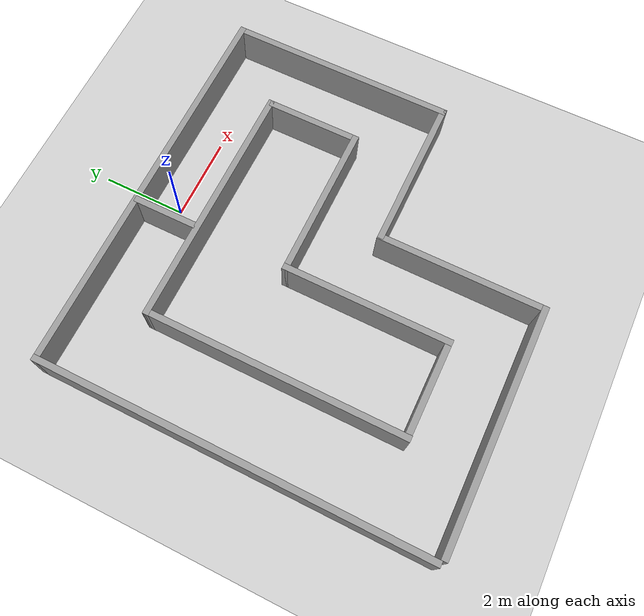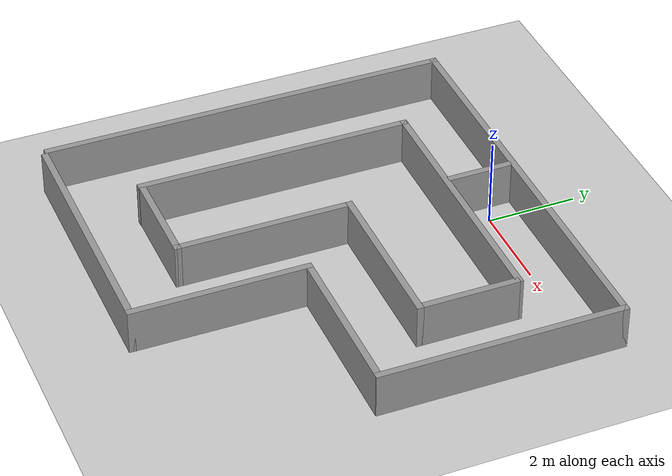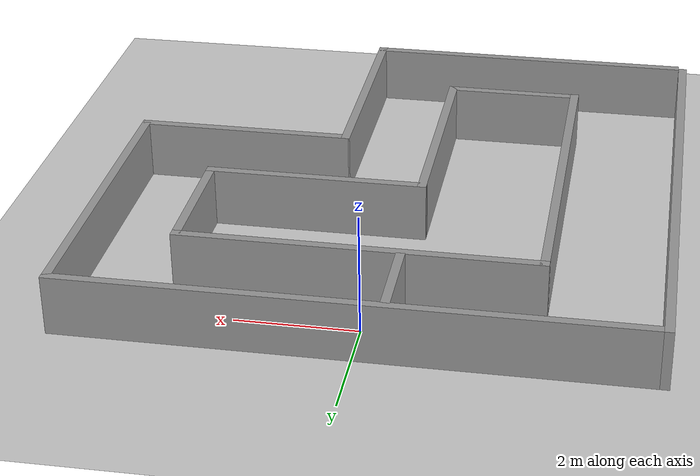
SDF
<sdf version="1.6">
 <world name="default">
  <light name="sun" type="directional">
   <pose>0 0 10 0 -0 0</pose>
   <diffuse>0.8 0.8 0.8 1</diffuse>
   <specular>0.2 0.2 0.2 1</specular>
   <attenuation>
    <range>1000</range>
    <constant>0.9</constant>
    <linear>0.01</linear>
    <quadratic>0.001</quadratic>
   </attenuation>
   <direction>0.5 0.1 -0.9</direction>
  </light>
  <model name="ground_plane">
   <static>1</static>
   <link name="link">
    <collision name="collision">
     <geometry><plane><normal>0 0 1</normal><size>100 100</size></plane></geometry>
     <surface><friction><ode><mu>100</mu><mu2>50</mu2></ode></friction></surface>
    </collision>
    <visual name="visual">
     <cast_shadows>0</cast_shadows>
     <geometry><plane><normal>0 0 1</normal><size>100 100</size></plane></geometry>
     <material>
      <script><uri>file://media/materials/scripts/gazebo.material</uri><name>Gazebo/Grey</name></script>
     </material>
    </visual>
    <velocity_decay><linear>0</linear><angular>0</angular></velocity_decay>
   </link>
  </model>
  <scene><ambient>0.4 0.4 0.4 1</ambient><background>0.7 0.7 0.7 1</background><shadows>0</shadows></scene>
  <physics name="default_physics" default="0" type="ode">
   <max_step_size>0.01</max_step_size>
   <real_time_factor>1</real_time_factor>
   <real_time_update_rate>0</real_time_update_rate>
  </physics>
  <model name="Circuit_ql_2">
   <pose>1e-06 -3.85 0 0 -0 1.567</pose>
   <link name="Wall_0">
    <collision name="Wall_0_Collision">
     <geometry><box><size>5.75 0.15 1</size></box></geometry>
     <pose>0 0 0.5 0 -0 0</pose>
    </collision>
    <visual name="Wall_0_Visual">
     <pose>0 0 0.5 0 -0 0</pose>
     <geometry><box><size>5.75 0.15 1</size></box></geometry>
     <material>
      <script><uri>file://media/materials/scripts/gazebo.material</uri><name>Gazebo/Grey</name></script>
      <ambient>1 1 1 1</ambient>
     </material>
    </visual>
    <pose>-4.6 1.725 0 0 0 -1.5708</pose>
   </link>
   <link name="Wall_1">
    <collision name="Wall_1_Collision">
     <geometry><box><size>4 0.15 1</size></box></geometry>
     <pose>0 0 0.5 0 -0 0</pose>
    </collision>
    <visual name="Wall_1_Visual">
     <pose>0 0 0.5 0 -0 0</pose>
     <geometry><box><size>4 0.15 1</size></box></geometry>
     <material>
      <script><uri>file://media/materials/scripts/gazebo.material</uri><name>Gazebo/Grey</name></script>
      <ambient>1 1 1 1</ambient>
     </material>
    </visual>
    <pose>-2.675 -1.075 0 0 -0 0</pose>
   </link>
   <link name="Wall_11">
    <collision name="Wall_11_Collision">
     <geometry><box><size>2.25 0.15 1</size></box></geometry>
     <pose>0 0 0.5 0 -0 0</pose>
    </collision>
    <visual name="Wall_11_Visual">
     <pose>0 0 0.5 0 -0 0</pose>
     <geometry><box><size>2.25 0.15 1</size></box></geometry>
     <material>
      <script><uri>file://media/materials/scripts/gazebo.material</uri><name>Gazebo/Grey</name></script>
      <ambient>1 1 1 1</ambient>
     </material>
    </visual>
    <pose>-3.036 1.559 0 0 0 -1.5708</pose>
   </link>
   <link name="Wall_12">
    <collision name="Wall_12_Collision">
     <geometry><box><size>4 0.15 1</size></box></geometry>
     <pose>0 0 0.5 0 -0 0</pose>
    </collision>
    <visual name="Wall_12_Visual">
     <pose>0 0 0.5 0 -0 0</pose>
     <geometry><box><size>4 0.15 1</size></box></geometry>
     <material>
      <script><uri>file://media/materials/scripts/gazebo.material</uri><name>Gazebo/Grey</name></script>
      <ambient>1 1 1 1</ambient>
     </material>
    </visual>
    <pose>-1.111 0.509 0 0 -0 0</pose>
   </link>
   <link name="Wall_13">
    <collision name="Wall_13_Collision">
     <geometry><box><size>3.75 0.15 1</size></box></geometry>
     <pose>0 0 0.5 0 -0 0</pose>
    </collision>
    <visual name="Wall_13_Visual">
     <pose>0 0 0.5 0 -0 0</pose>
     <geometry><box><size>3.75 0.15 1</size></box></geometry>
     <material>
      <script><uri>file://media/materials/scripts/gazebo.material</uri><name>Gazebo/Grey</name></script>
      <ambient>1 1 1 1</ambient>
     </material>
    </visual>
    <pose>0.814 -1.291 0 0 0 -1.5708</pose>
   </link>
   <link name="Wall_14">
    <collision name="Wall_14_Collision">
     <geometry><box><size>2.25 0.15 1</size></box></geometry>
     <pose>0 0 0.5 0 -0 0</pose>
    </collision>
    <visual name="Wall_14_Visual">
     <pose>0 0 0.5 0 -0 0</pose>
     <geometry><box><size>2.25 0.15 1</size></box></geometry>
     <material>
      <script><uri>file://media/materials/scripts/gazebo.material</uri><name>Gazebo/Grey</name></script>
      <ambient>1 1 1 1</ambient>
     </material>
    </visual>
    <pose>1.9 -3.091 0 0 -0 0</pose>
   </link>
   <link name="Wall_15">
    <collision name="Wall_15_Collision">
     <geometry><box><size>5.98502 0.15 1</size></box></geometry>
     <pose>0 0 0.5 0 -0 0</pose>
    </collision>
    <visual name="Wall_15_Visual">
     <pose>0 0 0.5 0 -0 0</pose>
     <geometry><box><size>5.98502 0.15 1</size></box></geometry>
     <material>
      <script><uri>file://media/materials/scripts/gazebo.material</uri><name>Gazebo/Grey</name></script>
      <ambient>1 1 1 1</ambient>
     </material>
    </visual>
    <pose>3.0215 -0.1735 0 0 -0 1.56823</pose>
   </link>
   <link name="Wall_16">
    <collision name="Wall_16_Collision">
     <geometry><box><size>6.2 0.15 1</size></box></geometry>
     <pose>0 0 0.5 0 -0 0</pose>
    </collision>
    <visual name="Wall_16_Visual">
     <pose>0 0 0.5 0 -0 0</pose>
     <geometry><box><size>6.2 0.15 1</size></box></geometry>
     <material>
      <script><uri>file://media/materials/scripts/gazebo.material</uri><name>Gazebo/Grey</name></script>
      <ambient>1 1 1 1</ambient>
     </material>
    </visual>
    <pose>-0.02 2.744 0 0 -0 3.14159</pose>
   </link>
   <link name="Wall_2">
    <collision name="Wall_2_Collision">
     <geometry><box><size>3.7 0.15 1</size></box></geometry>
     <pose>0 0 0.5 0 -0 0</pose>
    </collision>
    <visual name="Wall_2_Visual">
     <pose>0 0 0.5 0 -0 0</pose>
     <geometry><box><size>3.7 0.15 1</size></box></geometry>
     <material>
      <script><uri>file://media/materials/scripts/gazebo.material</uri><name>Gazebo/Grey</name></script>
      <ambient>1 1 1 1</ambient>
     </material>
    </visual>
    <pose>-0.75 -2.875 0 0 0 -1.5708</pose>
   </link>
   <link name="Wall_3">
    <collision name="Wall_3_Collision">
     <geometry><box><size>5.5 0.15 1</size></box></geometry>
     <pose>0 0 0.5 0 -0 0</pose>
    </collision>
    <visual name="Wall_3_Visual">
     <pose>0 0 0.5 0 -0 0</pose>
     <geometry><box><size>5.5 0.15 1</size></box></geometry>
     <material>
      <script><uri>file://media/materials/scripts/gazebo.material</uri><name>Gazebo/Grey</name></script>
      <ambient>1 1 1 1</ambient>
     </material>
    </visual>
    <pose>1.925 -4.675 0 0 -0 0</pose>
   </link>
   <link name="Wall_7">
    <collision name="Wall_7_Collision">
     <geometry><box><size>9.5 0.15 1</size></box></geometry>
     <pose>0 0 0.5 0 -0 0</pose>
    </collision>
    <visual name="Wall_7_Visual">
     <pose>0 0 0.5 0 -0 0</pose>
     <geometry><box><size>9.5 0.15 1</size></box></geometry>
     <material>
      <script><uri>file://media/materials/scripts/gazebo.material</uri><name>Gazebo/Grey</name></script>
      <ambient>1 1 1 1</ambient>
     </material>
    </visual>
    <pose>4.6 0 0 0 -0 1.5708</pose>
   </link>
   <link name="Wall_9">
    <collision name="Wall_9_Collision">
     <geometry><box><size>9.25 0.15 1</size></box></geometry>
     <pose>0 0 0.5 0 -0 0</pose>
    </collision>
    <visual name="Wall_9_Visual">
     <pose>0 0 0.5 0 -0 0</pose>
     <geometry><box><size>9.25 0.15 1</size></box></geometry>
     <material>
      <script><uri>file://media/materials/scripts/gazebo.material</uri><name>Gazebo/Grey</name></script>
      <ambient>1 1 1 1</ambient>
     </material>
    </visual>
    <pose>0.05 4.675 0 0 -0 3.14159</pose>
   </link>
   <static>1</static>
  </model>
  <gravity>0 0 -9.8</gravity>
  <magnetic_field>6e-06 2.3e-05 -4.2e-05</magnetic_field>
  <atmosphere type="adiabatic"/>
  <spherical_coordinates>
   <surface_model>EARTH_WGS84</surface_model>
   <latitude_deg>0</latitude_deg>
   <longitude_deg>0</longitude_deg>
   <elevation>0</elevation>
   <heading_deg>0</heading_deg>
  </spherical_coordinates>
  <model name="end_wall_0">
   <pose>-0.5 0 0 0 -0 0</pose>
   <link name="Wall_22">
    <collision name="Wall_22_Collision">
     <geometry><box><size>1.55 0.15 1</size></box></geometry>
     <pose>0 0 0.5 0 -0 0</pose>
    </collision>
    <visual name="Wall_22_Visual">
     <pose>0 0 0.5 0 -0 0</pose>
     <geometry><box><size>1.55 0.15 1</size></box></geometry>
     <material>
      <script><uri>file://media/materials/scripts/gazebo.material</uri><name>Gazebo/Grey</name></script>
      <ambient>1 1 1 1</ambient>
     </material>
     <meta><layer>0</layer></meta>
    </visual>
    <pose>0 0 0 0 -0 1.5708</pose>
   </link>
   <static>1</static>
  </model>
 </world>
</sdf>
